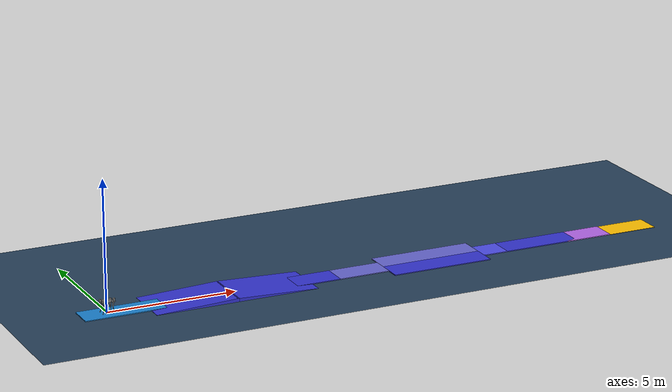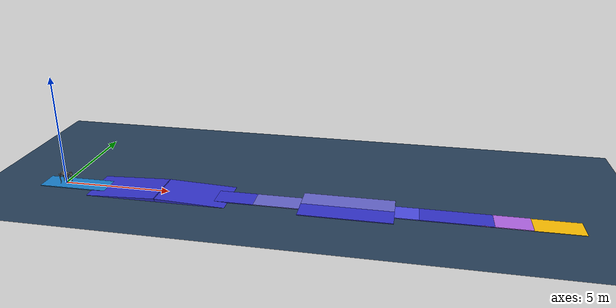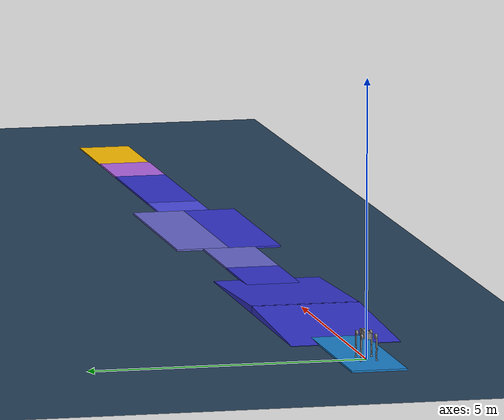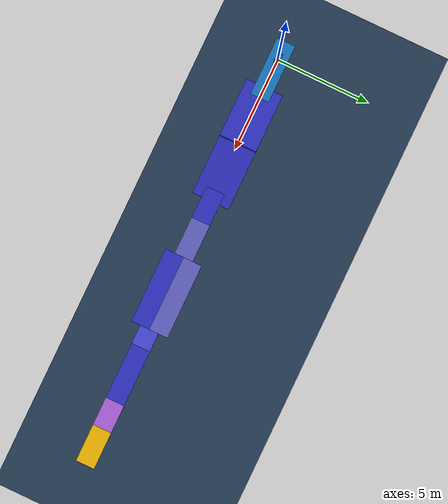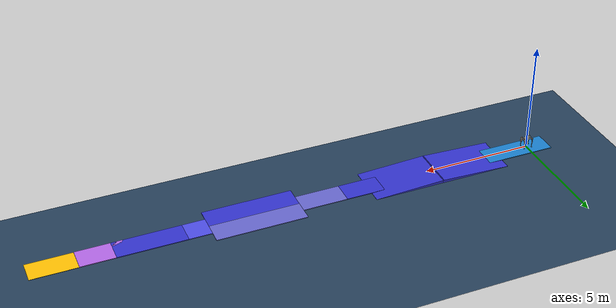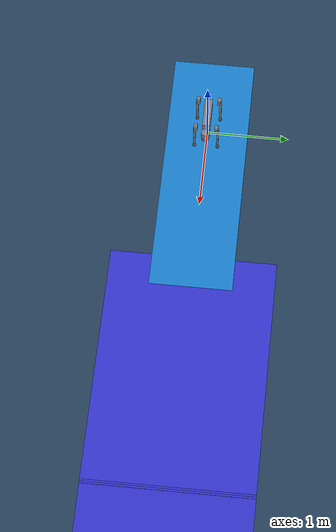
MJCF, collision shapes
<mujoco model="go2 scene">
  <include file="go2_multi.xml"/>

  <statistic center="0 0 0.1" extent="0.8"/>
	 <option timestep="0.002"  />

  <visual>
    <headlight diffuse="0.6 0.6 0.6" ambient="0.3 0.3 0.3" specular="0 0 0"/>
    <rgba haze="0.15 0.25 0.35 1"/>
    <global azimuth="-130" elevation="-20"/>
  </visual>

  <asset>
    <texture type="skybox" builtin="gradient" rgb1="0.3 0.5 0.7" rgb2="0 0 0" width="512" height="3072"/>
    <texture type="2d" name="groundplane" builtin="checker" mark="edge" rgb1="0.2 0.3 0.4" rgb2="0.1 0.2 0.3"
      markrgb="0.8 0.8 0.8" width="300" height="300"/>
    <material name="groundplane" texture="groundplane" texuniform="true" texrepeat="5 5" reflectance="0.2"/>
  </asset>

    <default class="prop">
      <geom type="box" priority="2" rgba="0 0.4 1 1"/>
    </default>

  <worldbody>
    <light pos="0 0 1.5" dir="0 0 -1" directional="true"/>
    <geom name="floor" size="0 0 0.05" type="plane" material="groundplane"  />
      <body name="corridor1" pos="7.0 0 -0.19">
            <geom name="slippery_surface" size="2.0 0.5 0.2" type="box" priority="2" friction="0.03 0.05 0.07" rgba="0.2 0.2 0.8 0.3"/>
      </body>
      <body name="corridor2" pos="2.0 0 -0.19">
            <geom name="normal_surface" size="3.0 0.5 0.2" type="box" priority="2" friction="0.8 0.2 0.3" rgba="0.1 0.5 0.8 1"/>
      </body>
      <body name="corridor3" pos="10.0 0.0 -0.19">
            <geom name="surf1" size="1.0 0.5 0.2" type="box" priority="2" friction="0.3 0.2 0.25" rgba="0.4 0.4 0.8 1"/>
      </body>
      <body name="corridor4" pos="13.0 0.5 -0.19">
            <geom name="surf2" size="2.0 0.5 0.2" type="box" priority="2" friction="0.3 0.2 0.25" rgba="0.4 0.4 0.8 1"/>
      </body>
      <body name="corridor5" pos="13.0 -0.5 -0.19">
            <geom name="surf3" size="2.0 0.5 0.2" type="box" priority="2"  friction="0.03 0.05 0.07" rgba="0.2 0.2 0.8 0.3"/>
      </body>
      <body name="corridor6" pos="15.5 0.0 -0.19">
            <geom name="surf4" size="0.5 0.5 0.2" type="box" priority="2"  friction="0.09 0.09 0.1" rgba="0.3 0.3 0.9 0.7"/>
      </body>
      <body name="corridor7" pos="17.5 0.0 -0.19">
            <geom name="surf5" size="1.5 0.5 0.2" type="box" priority="2"  friction="0.09 0.09 0.1" rgba="0.2 0.2 0.8 0.3"/>
      </body>

      <body name="corridor8" pos="19.5 0.0 -0.19">
            <geom name="surf6" size="1.0 0.5 0.2" type="box" priority="2"  friction="0.2 0.3 0.1" rgba="0.7 0.4 0.9 0.7"/>
      </body>

      <body name="corridor9" pos="21.5 0.0 -0.19">
            <geom name="surf7" size="1.0 0.5 0.185" type="box" priority="2"  friction="0.9 0.4 0.3" rgba="1.5 0.75 0.0 0.6"/>
      </body>

<!-- This works along 15.5sec to init  -->
      <geom name="ramp_inc"  class="prop" pos="3.13 0 -.18" size="1.6 1 .23" euler="0 -0.04 0" priority="2" friction="0.01 0.15 0.1" rgba="0.2 0.2 0.8 1.0"/>
      <geom name="ramp_decr" class="prop" pos="6.26 0 -.18" size="1.6 1 .23" euler="0 +0.04 0" priority="2" friction="0.01 0.15 0.1" rgba="0.2 0.2 0.8 1.0"/>

      <!-- This is along with 12.0 sec to init -->

  </worldbody>
</mujoco>

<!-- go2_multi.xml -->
<mujoco model="go2">
  <compiler angle="radian" meshdir="assets" autolimits="true"/>

  <option cone="pyramidal" impratio="100"/>

  <default>
    <default class="go2">
      <geom friction="0.6" margin="0.001" condim="1"/>
      <joint axis="0 1 0" damping="1" armature="0.01" frictionloss="0.2"/>
      <motor ctrlrange="-23.7 23.7"/>
      <default class="abduction">
        <joint axis="1 0 0" range="-1.0472 1.0472"/>
      </default>
      <default class="hip">
        <default class="front_hip">
          <joint range="-1.5708 3.4907"/>
        </default>
        <default class="back_hip">
          <joint range="-0.5236 4.5379"/>
        </default>
      </default>
      <default class="knee">
        <joint range="-2.7227 -0.83776"/>
        <motor ctrlrange="-45.43 45.43"/>
      </default>
      <default class="visual">
        <geom type="mesh" contype="0" conaffinity="0" group="2"/>
      </default>
      <default class="collision">
        <geom group="3"/>
        <default class="foot">
          <geom size="0.022" pos="-0.002 0 -0.213" priority="1" solimp="0.015 1 0.031"  condim="6"
            friction="0.8 0.02 0.01"/> <!-- solimp="0.015 1 0.031"--> <!-- solimp="0.915 1 0.031"-->
        </default>
      </default>
    </default>
  </default>

  <asset>
    <material name="metal" rgba=".9 .95 .95 1"/>
    <material name="black" rgba="0 0 0 1"/>
    <material name="white" rgba="1 1 1 1"/>
    <material name="gray" rgba="0.671705 0.692426 0.774270 1"/>

    <mesh file="base_0.obj"/>
    <mesh file="base_1.obj"/>
    <mesh file="base_2.obj"/>
    <mesh file="base_3.obj"/>
    <mesh file="base_4.obj"/>
    <mesh file="hip_0.obj"/>
    <mesh file="hip_1.obj"/>
    <mesh file="thigh_0.obj"/>
    <mesh file="thigh_1.obj"/>
    <mesh file="thigh_mirror_0.obj"/>
    <mesh file="thigh_mirror_1.obj"/>
    <mesh file="calf_0.obj"/>
    <mesh file="calf_1.obj"/>
    <mesh file="calf_mirror_0.obj"/>
    <mesh file="calf_mirror_1.obj"/>
    <mesh file="foot.obj"/>
  </asset>

  <worldbody>
    <body name="base" pos="0 0 0.445" childclass="go2">
      <inertial pos="0.021112 0 -0.005366" quat="-0.000543471 0.713435 -0.00173769 0.700719" mass="6.921"
        diaginertia="0.107027 0.0980771 0.0244531"/>
      <freejoint/>
      <camera name="realsense_cam" pos="0.2 0 0.4" euler="0 -0.9 0" fovy="60"/>

      <geom mesh="base_0" material="black" class="visual"/>
      <geom mesh="base_1" material="black" class="visual"/>
      <geom mesh="base_2" material="black" class="visual"/>
      <geom mesh="base_3" material="white" class="visual"/>
      <geom mesh="base_4" material="gray" class="visual"/>
      <geom size="0.1881 0.04675 0.057" type="box" class="collision"/>
      <geom size="0.05 0.045" pos="0.285 0 0.01" type="cylinder" class="collision"/>
      <geom size="0.047" pos="0.293 0 -0.06" class="collision"/>
      <site name="imu" pos="-0.02557 0 0.04232"/>

      <body name="FR_hip" pos="0.1934 -0.0465 0">
        <inertial pos="-0.0054 -0.00194 -0.000105" quat="0.498237 0.505462 0.499245 0.497014" mass="0.678"
          diaginertia="0.00088403 0.000596003 0.000479967"/>
        <joint name="FR_hip_joint" class="abduction"/>
        <geom mesh="hip_0" material="metal" class="visual" quat="4.63268e-05 1 0 0"/>
        <geom mesh="hip_1" material="gray" class="visual" quat="4.63268e-05 1 0 0"/>
        <geom size="0.046 0.02" pos="0 -0.08 0" quat="0.707107 0.707107 0 0" type="cylinder" class="collision"/>
        <body name="FR_thigh" pos="0 -0.0955 0">
          <inertial pos="-0.00374 0.0223 -0.0327" quat="0.551623 -0.0200632 0.0847635 0.829533" mass="1.152"
            diaginertia="0.00594973 0.00584149 0.000878787"/>
          <joint name="FR_thigh_joint" class="front_hip"/>
          <geom mesh="thigh_mirror_0" material="metal" class="visual"/>
          <geom mesh="thigh_mirror_1" material="gray" class="visual"/>
          <geom size="0.1065 0.01225 0.017" pos="0 0 -0.1065" quat="0.707107 0 0.707107 0" type="box" class="collision"/>
          <body name="FR_calf" pos="0 0 -0.213">
            <inertial pos="0.00629595 0.000622121 -0.141417" quat="0.703508 -0.00450087 0.00154099 0.710672"
              mass="0.241352" diaginertia="0.0014901 0.00146356 5.31397e-05"/>
            <joint name="FR_calf_joint" class="knee"/>
            <geom mesh="calf_mirror_0" material="gray" class="visual"/>
            <geom mesh="calf_mirror_1" material="black" class="visual"/>
            <geom size="0.013 0.06" pos="0.01 0 -0.06" quat="0.995004 0 -0.0998334 0" type="cylinder" class="collision"/>
            <geom size="0.011 0.0325" pos="0.02 0 -0.148" quat="0.999688 0 0.0249974 0" type="cylinder" class="collision"/>
            <geom pos="0 0 -0.213" mesh="foot" class="visual" material="black"/>
            <geom name="FR" class="foot"/>
            <site name="FR" pos="0 0 -0.213" type="sphere" size="0.023" group="3" />

          </body>
        </body>
      </body>

      <body name="FL_hip" pos="0.1934 0.0465 0">
        <inertial pos="-0.0054 0.00194 -0.000105" quat="0.497014 0.499245 0.505462 0.498237" mass="0.678"
          diaginertia="0.00088403 0.000596003 0.000479967"/>
        <joint name="FL_hip_joint" class="abduction"/>
        <geom mesh="hip_0" material="metal" class="visual"/>
        <geom mesh="hip_1" material="gray" class="visual"/>
        <geom size="0.046 0.02" pos="0 0.08 0" quat="1 1 0 0" type="cylinder" class="collision"/>
        <body name="FL_thigh" pos="0 0.0955 0">
          <inertial pos="-0.00374 -0.0223 -0.0327" quat="0.829533 0.0847635 -0.0200632 0.551623" mass="1.152"
            diaginertia="0.00594973 0.00584149 0.000878787"/>
          <joint name="FL_thigh_joint" class="front_hip"/>
          <geom mesh="thigh_0" material="metal" class="visual"/>
          <geom mesh="thigh_1" material="gray" class="visual"/>
          <geom size="0.1065 0.01225 0.017" pos="0 0 -0.1065" quat="0.707107 0 0.707107 0" type="box" class="collision"/>
          <body name="FL_calf" pos="0 0 -0.213">
            <inertial pos="0.00629595 -0.000622121 -0.141417" quat="0.710672 0.00154099 -0.00450087 0.703508"
              mass="0.241352" diaginertia="0.0014901 0.00146356 5.31397e-05"/>
            <joint name="FL_calf_joint" class="knee"/>
            <geom mesh="calf_0" material="gray" class="visual"/>
            <geom mesh="calf_1" material="black" class="visual"/>
            <geom size="0.012 0.06" pos="0.008 0 -0.06" quat="0.994493 0 -0.104807 0" type="cylinder" class="collision"/>
            <geom size="0.011 0.0325" pos="0.02 0 -0.148" quat="0.999688 0 0.0249974 0" type="cylinder" class="collision"/>
            <geom pos="0 0 -0.213" mesh="foot" class="visual" material="black"/>
            <geom name="FL" class="foot"/>
            <site name="FL" pos="0 0 -0.213" type="sphere" size="0.023" group="3"/>

          </body>
        </body>
      </body>

      <body name="RR_hip" pos="-0.1934 -0.0465 0">
        <inertial pos="0.0054 -0.00194 -0.000105" quat="0.499245 0.497014 0.498237 0.505462" mass="0.678"
          diaginertia="0.00088403 0.000596003 0.000479967"/>
        <joint name="RR_hip_joint" class="abduction"/>
        <geom mesh="hip_0" material="metal" class="visual" quat="2.14617e-09 4.63268e-05 4.63268e-05 -1"/>
        <geom mesh="hip_1" material="gray" class="visual" quat="2.14617e-09 4.63268e-05 4.63268e-05 -1"/>
        <geom size="0.046 0.02" pos="0 -0.08 0" quat="0.707107 0.707107 0 0" type="cylinder" class="collision"/>
        <body name="RR_thigh" pos="0 -0.0955 0">
          <inertial pos="-0.00374 0.0223 -0.0327" quat="0.551623 -0.0200632 0.0847635 0.829533" mass="1.152"
            diaginertia="0.00594973 0.00584149 0.000878787"/>
          <joint name="RR_thigh_joint" class="back_hip"/>
          <geom mesh="thigh_mirror_0" material="metal" class="visual"/>
          <geom mesh="thigh_mirror_1" material="gray" class="visual"/>
          <geom size="0.1065 0.01225 0.017" pos="0 0 -0.1065" quat="0.707107 0 0.707107 0" type="box" class="collision"/>
          <body name="RR_calf" pos="0 0 -0.213">
            <inertial pos="0.00629595 0.000622121 -0.141417" quat="0.703508 -0.00450087 0.00154099 0.710672"
              mass="0.241352" diaginertia="0.0014901 0.00146356 5.31397e-05"/>
            <joint name="RR_calf_joint" class="knee"/>
            <geom mesh="calf_mirror_0" material="gray" class="visual"/>
            <geom mesh="calf_mirror_1" material="black" class="visual"/>
            <geom size="0.013 0.06" pos="0.01 0 -0.06" quat="0.995004 0 -0.0998334 0" type="cylinder" class="collision"/>
            <geom size="0.011 0.0325" pos="0.02 0 -0.148" quat="0.999688 0 0.0249974 0" type="cylinder" class="collision"/>
            <geom pos="0 0 -0.213" mesh="foot" class="visual" material="black"/>
            <geom name="RR" class="foot"/>
            <site name="RR" pos="0 0 -0.213" type="sphere" size="0.023" group="3"/>

          </body>
        </body>
      </body>

      <body name="RL_hip" pos="-0.1934 0.0465 0">
        <inertial pos="0.0054 0.00194 -0.000105" quat="0.505462 0.498237 0.497014 0.499245" mass="0.678"
          diaginertia="0.00088403 0.000596003 0.000479967"/>
        <joint name="RL_hip_joint" class="abduction"/>
        <geom mesh="hip_0" material="metal" class="visual" quat="4.63268e-05 0 1 0"/>
        <geom mesh="hip_1" material="gray" class="visual" quat="4.63268e-05 0 1 0"/>
        <geom size="0.046 0.02" pos="0 0.08 0" quat="0.707107 0.707107 0 0" type="cylinder" class="collision"/>
        <body name="RL_thigh" pos="0 0.0955 0">
          <inertial pos="-0.00374 -0.0223 -0.0327" quat="0.829533 0.0847635 -0.0200632 0.551623" mass="1.152"
            diaginertia="0.00594973 0.00584149 0.000878787"/>
          <joint name="RL_thigh_joint" class="back_hip"/>
          <geom mesh="thigh_0" material="metal" class="visual"/>
          <geom mesh="thigh_1" material="gray" class="visual"/>
          <geom size="0.1065 0.01225 0.017" pos="0 0 -0.1065" quat="0.707107 0 0.707107 0" type="box" class="collision"/>
          <body name="RL_calf" pos="0 0 -0.213">
            <inertial pos="0.00629595 -0.000622121 -0.141417" quat="0.710672 0.00154099 -0.00450087 0.703508"
              mass="0.241352" diaginertia="0.0014901 0.00146356 5.31397e-05"/>
            <joint name="RL_calf_joint" class="knee"/>
            <geom mesh="calf_0" material="gray" class="visual"/>
            <geom mesh="calf_1" material="black" class="visual"/>
            <geom size="0.013 0.06" pos="0.01 0 -0.06" quat="0.995004 0 -0.0998334 0" type="cylinder" class="collision"/>
            <geom size="0.011 0.0325" pos="0.02 0 -0.148" quat="0.999688 0 0.0249974 0" type="cylinder" class="collision"/>
            <geom pos="0 0 -0.213" mesh="foot" class="visual" material="black"/>
            <geom name="RL" class="foot"/>
            <site name="RL" pos="0 0 -0.213" type="sphere" size="0.023" group="3"/>

          </body>
        </body>
      </body>

    </body>

  </worldbody>

  <actuator>
    <motor class="abduction" gear="1" name="FR_hip" joint="FR_hip_joint"/>
    <motor class="hip"       gear="1" name="FR_thigh" joint="FR_thigh_joint"/>
    <motor class="knee"      gear="1" name="FR_calf" joint="FR_calf_joint"/>
    <motor class="abduction" gear="1" name="FL_hip" joint="FL_hip_joint"/>
    <motor class="hip"       gear="1" name="FL_thigh" joint="FL_thigh_joint"/>
    <motor class="knee"      gear="1" name="FL_calf" joint="FL_calf_joint"/>
    <motor class="abduction" gear="1" name="RR_hip" joint="RR_hip_joint"/>
    <motor class="hip"       gear="1" name="RR_thigh" joint="RR_thigh_joint"/>
    <motor class="knee"      gear="1" name="RR_calf" joint="RR_calf_joint"/>
    <motor class="abduction" gear="1" name="RL_hip" joint="RL_hip_joint"/>
    <motor class="hip"       gear="1" name="RL_thigh" joint="RL_thigh_joint"/>
    <motor class="knee"      gear="1" name="RL_calf" joint="RL_calf_joint"/>

    <position class="abduction" name="pservo_FR_hip" joint="FR_hip_joint" kp="0.0"    />
    <velocity class="abduction" name="vservo_FR_hip" joint="FR_hip_joint" kv="5.5"  />
    <position class="hip" name="pservo_FR_thigh" joint="FR_thigh_joint"   kp="0.0"    />
    <velocity class="hip" name="vservo_FR_thigh" joint="FR_thigh_joint"   kv="3.0"  />
    <position class="knee" name="pservo_FR_calf" joint="FR_calf_joint"    kp="0.0"    />
    <velocity class="knee" name="vservo_FR_calf" joint="FR_calf_joint"    kv="2.0"  />

    <position class="abduction" name="pservo_FL_hip" joint="FL_hip_joint" kp="0.0"    />
    <velocity class="abduction" name="vservo_FL_hip" joint="FL_hip_joint" kv="5.5"  />
    <position class="hip" name="pservo_FL_thigh" joint="FL_thigh_joint"   kp="0.0"    />
    <velocity class="hip" name="vservo_FL_thigh" joint="FL_thigh_joint"   kv="3.0"  />
    <position class="knee" name="pservo_FL_calf" joint="FL_calf_joint"    kp="0.0"    />
    <velocity class="knee" name="vservo_FL_calf" joint="FL_calf_joint"    kv="2.0"  />

    <position class="abduction" name="pservo_RR_hip" joint="RR_hip_joint" kp="0.0"    />
    <velocity class="abduction" name="vservo_RR_hip" joint="RR_hip_joint" kv="5.5"  />
    <position class="hip" name="pservo_RR_thigh" joint="RR_thigh_joint"   kp="0.0"    />
    <velocity class="hip" name="vservo_RR_thigh" joint="RR_thigh_joint"   kv="3.0"  />
    <position class="knee" name="pservo_RR_calf" joint="RR_calf_joint"    kp="0.0"    />
    <velocity class="knee" name="vservo_RR_calf" joint="RR_calf_joint"    kv="2.0"  />

    <position class="abduction" name="pservo_RL_hip" joint="RL_hip_joint" kp="0.0"    />
    <velocity class="abduction" name="vservo_RL_hip" joint="RL_hip_joint" kv="5.5"  />
    <position class="hip" name="pservo_RL_thigh" joint="RL_thigh_joint"   kp="0.0"    />
    <velocity class="hip" name="vservo_RL_thigh" joint="RL_thigh_joint"   kv="3.0"  />
    <position class="knee" name="pservo_RL_calf" joint="RL_calf_joint"    kp="0.0"    />
    <velocity class="knee" name="vservo_RL_calf" joint="RL_calf_joint"    kv="2.0"  />

  </actuator>

    <sensor>

        <jointpos name="FR_hip_pos"     joint="FR_hip_joint"/>
        <jointpos name="FR_thigh_pos"   joint="FR_thigh_joint"/>
        <jointpos name="FR_calf_pos"    joint="FR_calf_joint"/>
        <jointpos name="FL_hip_pos"     joint="FL_hip_joint"/>
        <jointpos name="FL_thigh_pos"   joint="FL_thigh_joint"/>
        <jointpos name="FL_calf_pos"    joint="FL_calf_joint"/>
        <jointpos name="RR_hip_pos"     joint="RR_hip_joint"/>
        <jointpos name="RR_thigh_pos"   joint="RR_thigh_joint"/>
        <jointpos name="RR_calf_pos"    joint="RR_calf_joint" />
        <jointpos name="RL_hip_pos"     joint="RL_hip_joint"/>
        <jointpos name="RL_thigh_pos"   joint="RL_thigh_joint"/>
        <jointpos name="RL_calf_pos"    joint="RL_calf_joint"/>

        <jointvel name="FR_hip_vel"     joint="FR_hip_joint"/>
        <jointvel name="FR_thigh_vel"   joint="FR_thigh_joint"/>
        <jointvel name="FR_calf_vel"    joint="FR_calf_joint"/>
        <jointvel name="FL_hip_vel"     joint="FL_hip_joint"/>
        <jointvel name="FL_thigh_vel"   joint="FL_thigh_joint"/>
        <jointvel name="FL_calf_vel"    joint="FL_calf_joint"/>
        <jointvel name="RR_hip_vel"     joint="RR_hip_joint"/>
        <jointvel name="RR_thigh_vel"   joint="RR_thigh_joint"/>
        <jointvel name="RR_calf_vel"    joint="RR_calf_joint" />
        <jointvel name="RL_hip_vel"     joint="RL_hip_joint"/>
        <jointvel name="RL_thigh_vel"   joint="RL_thigh_joint"/>
        <jointvel name="RL_calf_vel"    joint="RL_calf_joint"/>

        <!-- Body IMU/PosQuat  -->
        <accelerometer name="Body_Acc" site="imu"/>
        <gyro name="Body_Gyro" site="imu"/>

        <framepos name="Body_Pos" objtype="site" objname="imu"/>
        <framequat name="Body_Quat" objtype="site" objname="imu"/>

        <!-- Extra sensors for tips Pos/Quat -->
        <framepos name="FR_Pos" objtype="site" objname="FR" reftype="site" refname="imu"/>
        <framequat name="FR_Quat" objtype="site" objname="FR"  reftype="site" refname="imu"/>

        <framepos name="FL_Pos" objtype="site" objname="FL"  reftype="site" refname="imu"/>
        <framequat name="FL_Quat" objtype="site" objname="FL"  reftype="site" refname="imu"/>

        <framepos name="RR_Pos" objtype="site" objname="RR"  reftype="site" refname="imu"/>
        <framequat name="RR_Quat" objtype="site" objname="RR"  reftype="site" refname="imu"/>

        <framepos name="RL_Pos" objtype="site" objname="RL"  reftype="site" refname="imu"/>
        <framequat name="RL_Quat" objtype="site" objname="RL"  reftype="site" refname="imu"/>

        <!-- Extra IMU sensor on foot tips -->
        <accelerometer name="FR_Acc" site="FR"/>
        <gyro name="FR_Gyro" site="FR"/>

        <accelerometer name="FL_Acc" site="FL"/>
        <gyro name="FL_Gyro" site="FL"/>

        <accelerometer name="RR_Acc" site="RR"/>
        <gyro name="RR_Gyro" site="RR"/>

        <accelerometer name="RL_Acc" site="RL"/>
        <gyro name="RL_Gyro" site="RL"/>

        <!-- Force sensors -->
        <force name="FR_foot_force" site="FR"/>
        <force name="FL_foot_force" site="FL"/>
        <force name="RR_foot_force" site="RR"/>
        <force name="RL_foot_force" site="RL"/>

        <!-- Velocity of the CoM -->
        <velocimeter name="Body_Vel" site="imu"/>

    </sensor>

    <contact >

        <pair  geom1="FR" geom2="slippery_surface" condim="4" friction="0.03 0.05 0.07" />
        <pair  geom1="FL" geom2="slippery_surface" condim="4" friction="0.03 0.05 0.07" />
        <pair  geom1="RR" geom2="slippery_surface" condim="4" friction="0.03 0.05 0.07" />
        <pair  geom1="RL" geom2="slippery_surface" condim="4" friction="0.03 0.05 0.07" />

        <pair  geom1="FR" geom2="normal_surface" condim="4" friction="0.8 0.2 0.2" />
        <pair  geom1="FL" geom2="normal_surface" condim="4" friction="0.8 0.2 0.2" />
        <pair  geom1="RR" geom2="normal_surface" condim="4" friction="0.8 0.2 0.2" />
        <pair  geom1="RL" geom2="normal_surface" condim="4" friction="0.8 0.2 0.2" />

        <pair  geom1="FR" geom2="surf1" condim="4" friction="0.3 0.2 0.25" />
        <pair  geom1="FL" geom2="surf1" condim="4" friction="0.3 0.2 0.25" />
        <pair  geom1="RR" geom2="surf1" condim="4" friction="0.3 0.2 0.25" />
        <pair  geom1="RL" geom2="surf1" condim="4" friction="0.3 0.2 0.25" />

        <pair  geom1="FR" geom2="surf2" condim="4" friction="0.3 0.2 0.25" />
        <pair  geom1="FL" geom2="surf2" condim="4" friction="0.3 0.2 0.25" />
        <pair  geom1="RR" geom2="surf2" condim="4" friction="0.3 0.2 0.25" />
        <pair  geom1="RL" geom2="surf2" condim="4" friction="0.3 0.2 0.25" />

        <pair  geom1="FR" geom2="surf3" condim="4" friction="0.03 0.05 0.07" />
        <pair  geom1="FL" geom2="surf3" condim="4" friction="0.03 0.05 0.07" />
        <pair  geom1="RR" geom2="surf3" condim="4" friction="0.03 0.05 0.07" />
        <pair  geom1="RL" geom2="surf3" condim="4" friction="0.03 0.05 0.07" />

        <pair  geom1="FR" geom2="surf4" condim="4" friction="0.09 0.09 0.1" />
        <pair  geom1="FL" geom2="surf4" condim="4" friction="0.09 0.09 0.1" />
        <pair  geom1="RR" geom2="surf4" condim="4" friction="0.09 0.09 0.1" />
        <pair  geom1="RL" geom2="surf4" condim="4" friction="0.09 0.09 0.1" />

        <pair  geom1="FR" geom2="surf5" condim="4" friction="0.03 0.05 0.07" />
        <pair  geom1="FL" geom2="surf5" condim="4" friction="0.03 0.05 0.07" />
        <pair  geom1="RR" geom2="surf5" condim="4" friction="0.03 0.05 0.07" />
        <pair  geom1="RL" geom2="surf5" condim="4" friction="0.03 0.05 0.07" />

        <pair  geom1="FR" geom2="surf6" condim="4" friction="0.2 0.3 0.1" />
        <pair  geom1="FL" geom2="surf6" condim="4" friction="0.2 0.3 0.1" />
        <pair  geom1="RR" geom2="surf6" condim="4" friction="0.2 0.3 0.1" />
        <pair  geom1="RL" geom2="surf6" condim="4" friction="0.2 0.3 0.1" />

        <pair  geom1="FR" geom2="surf7" condim="4" friction="0.9 0.9 0.5" />
        <pair  geom1="FL" geom2="surf7" condim="4" friction="0.9 0.9 0.5" />
        <pair  geom1="RR" geom2="surf7" condim="4" friction="0.9 0.9 0.5" />
        <pair  geom1="RL" geom2="surf7" condim="4" friction="0.9 0.9 0.5" />

        <pair  geom1="FR" geom2="ramp_inc" condim="4" friction="0.01 0.15 0.1" />
        <pair  geom1="FL" geom2="ramp_inc" condim="4" friction="0.01 0.15 0.1" />
        <pair  geom1="RR" geom2="ramp_inc" condim="4" friction="0.01 0.15 0.1" />
        <pair  geom1="RL" geom2="ramp_inc" condim="4" friction="0.01 0.15 0.1" />

        <pair  geom1="FR" geom2="ramp_decr" condim="4" friction="0.01 0.15 0.1" />
        <pair  geom1="FL" geom2="ramp_decr" condim="4" friction="0.01 0.15 0.1" />
        <pair  geom1="RR" geom2="ramp_decr" condim="4" friction="0.01 0.15 0.1" />
        <pair  geom1="RL" geom2="ramp_decr" condim="4" friction="0.01 0.15 0.1" />

    </contact>

</mujoco>
